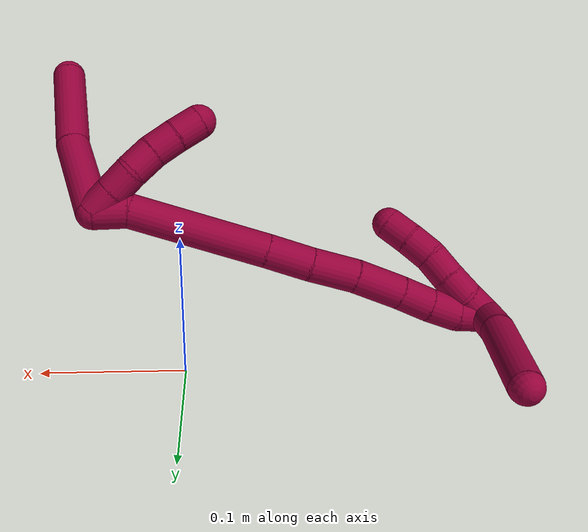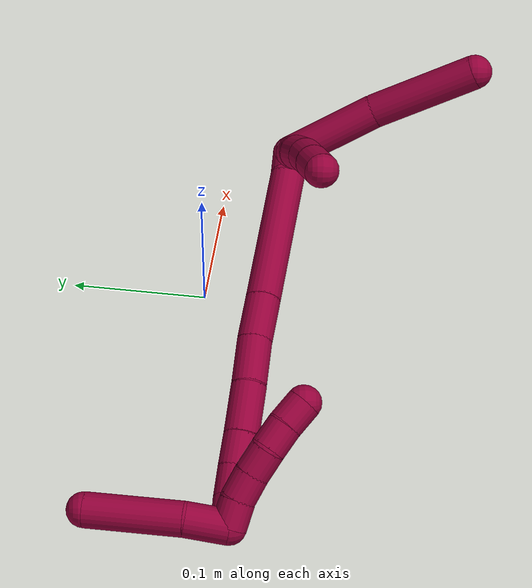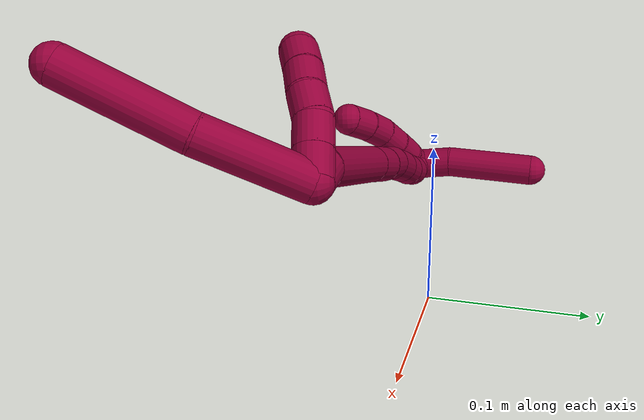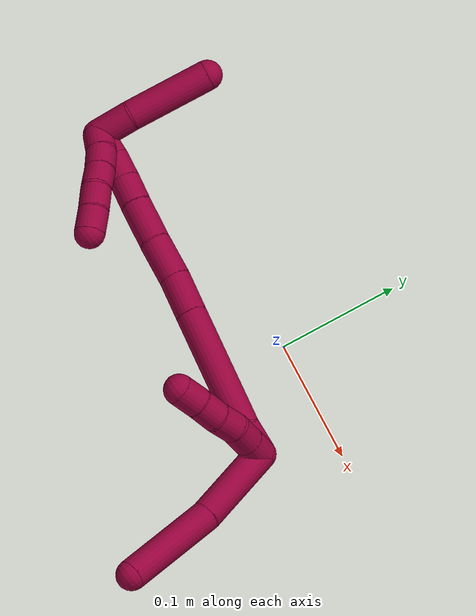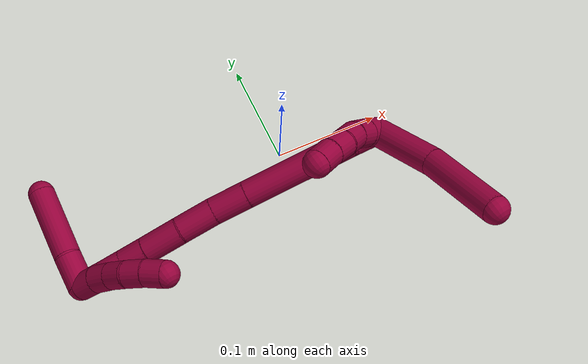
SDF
<sdf version="1.7">
 <world name="default">
  <model name="8">
   <static>0</static>
   <link name="8">
    <collision name="collision-cylinder-e_1_2_8">
     <pose>0.016869 -0.005942 -0.030041 2.9463 0.503503 2.41383</pose>
     <geometry><cylinder><radius>0.0125</radius><length>0.069924</length></cylinder></geometry>
     <surface>
      <friction><ode><mu>1.16</mu><mu2>1.16</mu2><slip1>0</slip1><slip2>0</slip2></ode></friction>
      <contact><ode><kp>1e+06</kp><kd>1</kd><max_vel>0</max_vel><min_depth>0.001</min_depth></ode></contact>
     </surface>
    </collision>
    <visual name="visual-cylinder-e_1_2_8">
     <pose>0.016869 -0.005942 -0.030041 2.9463 0.503503 2.41383</pose>
     <geometry><cylinder><radius>0.0125</radius><length>0.069924</length></cylinder></geometry>
     <material><ambient>0.584314 0 0.227451 1</ambient></material>
    </visual>
    <collision name="collision-cylinder-e_2_8_6">
     <pose>0.049855 -0.024172 -0.094612 2.79972 0.414301 1.76633</pose>
     <geometry><cylinder><radius>0.0125</radius><length>0.080076</length></cylinder></geometry>
     <surface>
      <friction><ode><mu>1.16</mu><mu2>1.16</mu2><slip1>0</slip1><slip2>0</slip2></ode></friction>
      <contact><ode><kp>1e+06</kp><kd>1</kd><max_vel>0</max_vel><min_depth>0.001</min_depth></ode></contact>
     </surface>
    </collision>
    <visual name="visual-cylinder-e_2_8_6">
     <pose>0.049855 -0.024172 -0.094612 2.79972 0.414301 1.76633</pose>
     <geometry><cylinder><radius>0.0125</radius><length>0.080076</length></cylinder></geometry>
     <material><ambient>0.584314 0 0.227451 1</ambient></material>
    </visual>
    <collision name="collision-cylinder-e_1_2_9">
     <pose>0.001181 -0.009928 -0.000206 1.59152 0.118361 0.120834</pose>
     <geometry><cylinder><radius>0.0125</radius><length>0.02</length></cylinder></geometry>
     <surface>
      <friction><ode><mu>1.16</mu><mu2>1.16</mu2><slip1>0</slip1><slip2>0</slip2></ode></friction>
      <contact><ode><kp>1e+06</kp><kd>1</kd><max_vel>0</max_vel><min_depth>0.001</min_depth></ode></contact>
     </surface>
    </collision>
    <visual name="visual-cylinder-e_1_2_9">
     <pose>0.001181 -0.009928 -0.000206 1.59152 0.118361 0.120834</pose>
     <geometry><cylinder><radius>0.0125</radius><length>0.02</length></cylinder></geometry>
     <material><ambient>0.584314 0 0.227451 1</ambient></material>
    </visual>
    <collision name="collision-cylinder-e_2_9_10">
     <pose>0.003516 -0.029784 -0.000727 1.60255 0.115663 0.119387</pose>
     <geometry><cylinder><radius>0.0125</radius><length>0.02</length></cylinder></geometry>
     <surface>
      <friction><ode><mu>1.16</mu><mu2>1.16</mu2><slip1>0</slip1><slip2>0</slip2></ode></friction>
      <contact><ode><kp>1e+06</kp><kd>1</kd><max_vel>0</max_vel><min_depth>0.001</min_depth></ode></contact>
     </surface>
    </collision>
    <visual name="visual-cylinder-e_2_9_10">
     <pose>0.003516 -0.029784 -0.000727 1.60255 0.115663 0.119387</pose>
     <geometry><cylinder><radius>0.0125</radius><length>0.02</length></cylinder></geometry>
     <material><ambient>0.584314 0 0.227451 1</ambient></material>
    </visual>
    <collision name="collision-cylinder-e_3_10_11">
     <pose>0.004633 -0.049421 -0.003437 1.81257 -0.003647 -0.004656</pose>
     <geometry><cylinder><radius>0.0125</radius><length>0.02</length></cylinder></geometry>
     <surface>
      <friction><ode><mu>1.16</mu><mu2>1.16</mu2><slip1>0</slip1><slip2>0</slip2></ode></friction>
      <contact><ode><kp>1e+06</kp><kd>1</kd><max_vel>0</max_vel><min_depth>0.001</min_depth></ode></contact>
     </surface>
    </collision>
    <visual name="visual-cylinder-e_3_10_11">
     <pose>0.004633 -0.049421 -0.003437 1.81257 -0.003647 -0.004656</pose>
     <geometry><cylinder><radius>0.0125</radius><length>0.02</length></cylinder></geometry>
     <material><ambient>0.584314 0 0.227451 1</ambient></material>
    </visual>
    <collision name="collision-cylinder-e_4_11_12">
     <pose>0.003198 -0.068868 -0.007627 1.75316 -0.140331 -0.168453</pose>
     <geometry><cylinder><radius>0.0125</radius><length>0.02</length></cylinder></geometry>
     <surface>
      <friction><ode><mu>1.16</mu><mu2>1.16</mu2><slip1>0</slip1><slip2>0</slip2></ode></friction>
      <contact><ode><kp>1e+06</kp><kd>1</kd><max_vel>0</max_vel><min_depth>0.001</min_depth></ode></contact>
     </surface>
    </collision>
    <visual name="visual-cylinder-e_4_11_12">
     <pose>0.003198 -0.068868 -0.007627 1.75316 -0.140331 -0.168453</pose>
     <geometry><cylinder><radius>0.0125</radius><length>0.02</length></cylinder></geometry>
     <material><ambient>0.584314 0 0.227451 1</ambient></material>
    </visual>
    <collision name="collision-cylinder-e_5_12_5">
     <pose>-0.000229 -0.08811 -0.011779 1.81386 -0.204295 -0.260569</pose>
     <geometry><cylinder><radius>0.0125</radius><length>0.02</length></cylinder></geometry>
     <surface>
      <friction><ode><mu>1.16</mu><mu2>1.16</mu2><slip1>0</slip1><slip2>0</slip2></ode></friction>
      <contact><ode><kp>1e+06</kp><kd>1</kd><max_vel>0</max_vel><min_depth>0.001</min_depth></ode></contact>
     </surface>
    </collision>
    <visual name="visual-cylinder-e_5_12_5">
     <pose>-0.000229 -0.08811 -0.011779 1.81386 -0.204295 -0.260569</pose>
     <geometry><cylinder><radius>0.0125</radius><length>0.02</length></cylinder></geometry>
     <material><ambient>0.584314 0 0.227451 1</ambient></material>
    </visual>
    <collision name="collision-cylinder-e_1_2_13">
     <pose>-0.007493 -0.009973 0.001407 1.43068 -0.639654 -0.560383</pose>
     <geometry><cylinder><radius>0.0125</radius><length>0.025107</length></cylinder></geometry>
     <surface>
      <friction><ode><mu>1.16</mu><mu2>1.16</mu2><slip1>0</slip1><slip2>0</slip2></ode></friction>
      <contact><ode><kp>1e+06</kp><kd>1</kd><max_vel>0</max_vel><min_depth>0.001</min_depth></ode></contact>
     </surface>
    </collision>
    <visual name="visual-cylinder-e_1_2_13">
     <pose>-0.007493 -0.009973 0.001407 1.43068 -0.639654 -0.560383</pose>
     <geometry><cylinder><radius>0.0125</radius><length>0.025107</length></cylinder></geometry>
     <material><ambient>0.584314 0 0.227451 1</ambient></material>
    </visual>
    <collision name="collision-cylinder-e_2_13_14">
     <pose>-0.056276 -0.048317 0.012398 1.24501 -0.943303 -0.701819</pose>
     <geometry><cylinder><radius>0.0125</radius><length>0.102012</length></cylinder></geometry>
     <surface>
      <friction><ode><mu>1.16</mu><mu2>1.16</mu2><slip1>0</slip1><slip2>0</slip2></ode></friction>
      <contact><ode><kp>1e+06</kp><kd>1</kd><max_vel>0</max_vel><min_depth>0.001</min_depth></ode></contact>
     </surface>
    </collision>
    <visual name="visual-cylinder-e_2_13_14">
     <pose>-0.056276 -0.048317 0.012398 1.24501 -0.943303 -0.701819</pose>
     <geometry><cylinder><radius>0.0125</radius><length>0.102012</length></cylinder></geometry>
     <material><ambient>0.584314 0 0.227451 1</ambient></material>
    </visual>
    <collision name="collision-cylinder-e_3_14_15">
     <pose>-0.111155 -0.085648 0.025148 1.23116 -0.960569 -0.706055</pose>
     <geometry><cylinder><radius>0.0125</radius><length>0.033164</length></cylinder></geometry>
     <surface>
      <friction><ode><mu>1.16</mu><mu2>1.16</mu2><slip1>0</slip1><slip2>0</slip2></ode></friction>
      <contact><ode><kp>1e+06</kp><kd>1</kd><max_vel>0</max_vel><min_depth>0.001</min_depth></ode></contact>
     </surface>
    </collision>
    <visual name="visual-cylinder-e_3_14_15">
     <pose>-0.111155 -0.085648 0.025148 1.23116 -0.960569 -0.706055</pose>
     <geometry><cylinder><radius>0.0125</radius><length>0.033164</length></cylinder></geometry>
     <material><ambient>0.584314 0 0.227451 1</ambient></material>
    </visual>
    <collision name="collision-cylinder-e_4_15_16">
     <pose>-0.138681 -0.104422 0.030493 1.35226 -0.945891 -0.779067</pose>
     <geometry><cylinder><radius>0.0125</radius><length>0.034369</length></cylinder></geometry>
     <surface>
      <friction><ode><mu>1.16</mu><mu2>1.16</mu2><slip1>0</slip1><slip2>0</slip2></ode></friction>
      <contact><ode><kp>1e+06</kp><kd>1</kd><max_vel>0</max_vel><min_depth>0.001</min_depth></ode></contact>
     </surface>
    </collision>
    <visual name="visual-cylinder-e_4_15_16">
     <pose>-0.138681 -0.104422 0.030493 1.35226 -0.945891 -0.779067</pose>
     <geometry><cylinder><radius>0.0125</radius><length>0.034369</length></cylinder></geometry>
     <material><ambient>0.584314 0 0.227451 1</ambient></material>
    </visual>
    <collision name="collision-cylinder-e_5_16_17">
     <pose>-0.168207 -0.123062 0.03531 1.28042 -1.03707 -0.803804</pose>
     <geometry><cylinder><radius>0.0125</radius><length>0.036215</length></cylinder></geometry>
     <surface>
      <friction><ode><mu>1.16</mu><mu2>1.16</mu2><slip1>0</slip1><slip2>0</slip2></ode></friction>
      <contact><ode><kp>1e+06</kp><kd>1</kd><max_vel>0</max_vel><min_depth>0.001</min_depth></ode></contact>
     </surface>
    </collision>
    <visual name="visual-cylinder-e_5_16_17">
     <pose>-0.168207 -0.123062 0.03531 1.28042 -1.03707 -0.803804</pose>
     <geometry><cylinder><radius>0.0125</radius><length>0.036215</length></cylinder></geometry>
     <material><ambient>0.584314 0 0.227451 1</ambient></material>
    </visual>
    <collision name="collision-cylinder-e_6_17_18">
     <pose>-0.19439 -0.137282 0.039911 1.22165 -1.07435 -0.790162</pose>
     <geometry><cylinder><radius>0.0125</radius><length>0.024099</length></cylinder></geometry>
     <surface>
      <friction><ode><mu>1.16</mu><mu2>1.16</mu2><slip1>0</slip1><slip2>0</slip2></ode></friction>
      <contact><ode><kp>1e+06</kp><kd>1</kd><max_vel>0</max_vel><min_depth>0.001</min_depth></ode></contact>
     </surface>
    </collision>
    <visual name="visual-cylinder-e_6_17_18">
     <pose>-0.19439 -0.137282 0.039911 1.22165 -1.07435 -0.790162</pose>
     <geometry><cylinder><radius>0.0125</radius><length>0.024099</length></cylinder></geometry>
     <material><ambient>0.584314 0 0.227451 1</ambient></material>
    </visual>
    <collision name="collision-cylinder-e_7_18_19">
     <pose>-0.214651 -0.148506 0.043521 1.29554 -1.01083 -0.793079</pose>
     <geometry><cylinder><radius>0.0125</radius><length>0.022817</length></cylinder></geometry>
     <surface>
      <friction><ode><mu>1.16</mu><mu2>1.16</mu2><slip1>0</slip1><slip2>0</slip2></ode></friction>
      <contact><ode><kp>1e+06</kp><kd>1</kd><max_vel>0</max_vel><min_depth>0.001</min_depth></ode></contact>
     </surface>
    </collision>
    <visual name="visual-cylinder-e_7_18_19">
     <pose>-0.214651 -0.148506 0.043521 1.29554 -1.01083 -0.793079</pose>
     <geometry><cylinder><radius>0.0125</radius><length>0.022817</length></cylinder></geometry>
     <material><ambient>0.584314 0 0.227451 1</ambient></material>
    </visual>
    <collision name="collision-cylinder-e_8_19_1">
     <pose>-0.231856 -0.162441 0.046126 1.4531 -0.745809 -0.669203</pose>
     <geometry><cylinder><radius>0.0125</radius><length>0.022218</length></cylinder></geometry>
     <surface>
      <friction><ode><mu>1.16</mu><mu2>1.16</mu2><slip1>0</slip1><slip2>0</slip2></ode></friction>
      <contact><ode><kp>1e+06</kp><kd>1</kd><max_vel>0</max_vel><min_depth>0.001</min_depth></ode></contact>
     </surface>
    </collision>
    <visual name="visual-cylinder-e_8_19_1">
     <pose>-0.231856 -0.162441 0.046126 1.4531 -0.745809 -0.669203</pose>
     <geometry><cylinder><radius>0.0125</radius><length>0.022218</length></cylinder></geometry>
     <material><ambient>0.584314 0 0.227451 1</ambient></material>
    </visual>
    <collision name="collision-cylinder-e_1_1_20">
     <pose>-0.237097 -0.169613 0.06235 -0.060948 0.149088 -0.004553</pose>
     <geometry><cylinder><radius>0.0125</radius><length>0.030932</length></cylinder></geometry>
     <surface>
      <friction><ode><mu>1.16</mu><mu2>1.16</mu2><slip1>0</slip1><slip2>0</slip2></ode></friction>
      <contact><ode><kp>1e+06</kp><kd>1</kd><max_vel>0</max_vel><min_depth>0.001</min_depth></ode></contact>
     </surface>
    </collision>
    <visual name="visual-cylinder-e_1_1_20">
     <pose>-0.237097 -0.169613 0.06235 -0.060948 0.149088 -0.004553</pose>
     <geometry><cylinder><radius>0.0125</radius><length>0.030932</length></cylinder></geometry>
     <material><ambient>0.584314 0 0.227451 1</ambient></material>
    </visual>
    <collision name="collision-cylinder-e_2_20_4">
     <pose>-0.233768 -0.162061 0.111494 -0.192977 0.029872 -0.002892</pose>
     <geometry><cylinder><radius>0.0125</radius><length>0.069068</length></cylinder></geometry>
     <surface>
      <friction><ode><mu>1.16</mu><mu2>1.16</mu2><slip1>0</slip1><slip2>0</slip2></ode></friction>
      <contact><ode><kp>1e+06</kp><kd>1</kd><max_vel>0</max_vel><min_depth>0.001</min_depth></ode></contact>
     </surface>
    </collision>
    <visual name="visual-cylinder-e_2_20_4">
     <pose>-0.233768 -0.162061 0.111494 -0.192977 0.029872 -0.002892</pose>
     <geometry><cylinder><radius>0.0125</radius><length>0.069068</length></cylinder></geometry>
     <material><ambient>0.584314 0 0.227451 1</ambient></material>
    </visual>
    <collision name="collision-cylinder-e_1_1_21">
     <pose>-0.229861 -0.16943 0.044278 -2.76339 1.26405 -2.63028</pose>
     <geometry><cylinder><radius>0.0125</radius><length>0.02</length></cylinder></geometry>
     <surface>
      <friction><ode><mu>1.16</mu><mu2>1.16</mu2><slip1>0</slip1><slip2>0</slip2></ode></friction>
      <contact><ode><kp>1e+06</kp><kd>1</kd><max_vel>0</max_vel><min_depth>0.001</min_depth></ode></contact>
     </surface>
    </collision>
    <visual name="visual-cylinder-e_1_1_21">
     <pose>-0.229861 -0.16943 0.044278 -2.76339 1.26405 -2.63028</pose>
     <geometry><cylinder><radius>0.0125</radius><length>0.02</length></cylinder></geometry>
     <material><ambient>0.584314 0 0.227451 1</ambient></material>
    </visual>
    <collision name="collision-cylinder-e_2_21_22">
     <pose>-0.211438 -0.167781 0.036924 -3.02483 1.0951 -2.95046</pose>
     <geometry><cylinder><radius>0.0125</radius><length>0.02</length></cylinder></geometry>
     <surface>
      <friction><ode><mu>1.16</mu><mu2>1.16</mu2><slip1>0</slip1><slip2>0</slip2></ode></friction>
      <contact><ode><kp>1e+06</kp><kd>1</kd><max_vel>0</max_vel><min_depth>0.001</min_depth></ode></contact>
     </surface>
    </collision>
    <visual name="visual-cylinder-e_2_21_22">
     <pose>-0.211438 -0.167781 0.036924 -3.02483 1.0951 -2.95046</pose>
     <geometry><cylinder><radius>0.0125</radius><length>0.02</length></cylinder></geometry>
     <material><ambient>0.584314 0 0.227451 1</ambient></material>
    </visual>
    <collision name="collision-cylinder-e_3_22_23">
     <pose>-0.193971 -0.167234 0.027234 -3.1389 1.03076 -3.13685</pose>
     <geometry><cylinder><radius>0.0125</radius><length>0.02</length></cylinder></geometry>
     <surface>
      <friction><ode><mu>1.16</mu><mu2>1.16</mu2><slip1>0</slip1><slip2>0</slip2></ode></friction>
      <contact><ode><kp>1e+06</kp><kd>1</kd><max_vel>0</max_vel><min_depth>0.001</min_depth></ode></contact>
     </surface>
    </collision>
    <visual name="visual-cylinder-e_3_22_23">
     <pose>-0.193971 -0.167234 0.027234 -3.1389 1.03076 -3.13685</pose>
     <geometry><cylinder><radius>0.0125</radius><length>0.02</length></cylinder></geometry>
     <material><ambient>0.584314 0 0.227451 1</ambient></material>
    </visual>
    <collision name="collision-cylinder-e_4_23_24">
     <pose>-0.177363 -0.165295 0.016454 -2.81252 0.932512 -2.50425</pose>
     <geometry><cylinder><radius>0.0125</radius><length>0.02</length></cylinder></geometry>
     <surface>
      <friction><ode><mu>1.16</mu><mu2>1.16</mu2><slip1>0</slip1><slip2>0</slip2></ode></friction>
      <contact><ode><kp>1e+06</kp><kd>1</kd><max_vel>0</max_vel><min_depth>0.001</min_depth></ode></contact>
     </surface>
    </collision>
    <visual name="visual-cylinder-e_4_23_24">
     <pose>-0.177363 -0.165295 0.016454 -2.81252 0.932512 -2.50425</pose>
     <geometry><cylinder><radius>0.0125</radius><length>0.02</length></cylinder></geometry>
     <material><ambient>0.584314 0 0.227451 1</ambient></material>
    </visual>
    <collision name="collision-cylinder-e_5_24_3">
     <pose>-0.161992 -0.161081 0.004421 -2.7979 0.8242 -2.38568</pose>
     <geometry><cylinder><radius>0.0125</radius><length>0.02</length></cylinder></geometry>
     <surface>
      <friction><ode><mu>1.16</mu><mu2>1.16</mu2><slip1>0</slip1><slip2>0</slip2></ode></friction>
      <contact><ode><kp>1e+06</kp><kd>1</kd><max_vel>0</max_vel><min_depth>0.001</min_depth></ode></contact>
     </surface>
    </collision>
    <visual name="visual-cylinder-e_5_24_3">
     <pose>-0.161992 -0.161081 0.004421 -2.7979 0.8242 -2.38568</pose>
     <geometry><cylinder><radius>0.0125</radius><length>0.02</length></cylinder></geometry>
     <material><ambient>0.584314 0 0.227451 1</ambient></material>
    </visual>
    <collision name="collision-sphere-3">
     <pose>-0.154652 -0.158792 -0.001973 0 -0 0</pose>
     <geometry><sphere><radius>0.0125</radius></sphere></geometry>
     <surface>
      <friction><ode><mu>1.16</mu><mu2>1.16</mu2><slip1>0</slip1><slip2>0</slip2></ode></friction>
      <contact><ode><kp>1e+06</kp><kd>1</kd><max_vel>0</max_vel><min_depth>0.001</min_depth></ode></contact>
     </surface>
    </collision>
    <visual name="visual-sphere-3">
     <pose>-0.154652 -0.158792 -0.001973 0 -0 0</pose>
     <geometry><sphere><radius>0.0125</radius></sphere></geometry>
     <material><ambient>0.584314 0 0.227451 1</ambient></material>
    </visual>
    <collision name="collision-sphere-24">
     <pose>-0.169332 -0.163369 0.010815 0 -0 0</pose>
     <geometry><sphere><radius>0.0125</radius></sphere></geometry>
     <surface>
      <friction><ode><mu>1.16</mu><mu2>1.16</mu2><slip1>0</slip1><slip2>0</slip2></ode></friction>
      <contact><ode><kp>1e+06</kp><kd>1</kd><max_vel>0</max_vel><min_depth>0.001</min_depth></ode></contact>
     </surface>
    </collision>
    <visual name="visual-sphere-24">
     <pose>-0.169332 -0.163369 0.010815 0 -0 0</pose>
     <geometry><sphere><radius>0.0125</radius></sphere></geometry>
     <material><ambient>0.584314 0 0.227451 1</ambient></material>
    </visual>
    <collision name="collision-sphere-23">
     <pose>-0.185394 -0.16722 0.022092 0 -0 0</pose>
     <geometry><sphere><radius>0.0125</radius></sphere></geometry>
     <surface>
      <friction><ode><mu>1.16</mu><mu2>1.16</mu2><slip1>0</slip1><slip2>0</slip2></ode></friction>
      <contact><ode><kp>1e+06</kp><kd>1</kd><max_vel>0</max_vel><min_depth>0.001</min_depth></ode></contact>
     </surface>
    </collision>
    <visual name="visual-sphere-23">
     <pose>-0.185394 -0.16722 0.022092 0 -0 0</pose>
     <geometry><sphere><radius>0.0125</radius></sphere></geometry>
     <material><ambient>0.584314 0 0.227451 1</ambient></material>
    </visual>
    <collision name="collision-sphere-22">
     <pose>-0.202548 -0.167248 0.032375 0 -0 0</pose>
     <geometry><sphere><radius>0.0125</radius></sphere></geometry>
     <surface>
      <friction><ode><mu>1.16</mu><mu2>1.16</mu2><slip1>0</slip1><slip2>0</slip2></ode></friction>
      <contact><ode><kp>1e+06</kp><kd>1</kd><max_vel>0</max_vel><min_depth>0.001</min_depth></ode></contact>
     </surface>
    </collision>
    <visual name="visual-sphere-22">
     <pose>-0.202548 -0.167248 0.032375 0 -0 0</pose>
     <geometry><sphere><radius>0.0125</radius></sphere></geometry>
     <material><ambient>0.584314 0 0.227451 1</ambient></material>
    </visual>
    <collision name="collision-sphere-21">
     <pose>-0.220327 -0.168315 0.041472 0 -0 0</pose>
     <geometry><sphere><radius>0.0125</radius></sphere></geometry>
     <surface>
      <friction><ode><mu>1.16</mu><mu2>1.16</mu2><slip1>0</slip1><slip2>0</slip2></ode></friction>
      <contact><ode><kp>1e+06</kp><kd>1</kd><max_vel>0</max_vel><min_depth>0.001</min_depth></ode></contact>
     </surface>
    </collision>
    <visual name="visual-sphere-21">
     <pose>-0.220327 -0.168315 0.041472 0 -0 0</pose>
     <geometry><sphere><radius>0.0125</radius></sphere></geometry>
     <material><ambient>0.584314 0 0.227451 1</ambient></material>
    </visual>
    <collision name="collision-sphere-4">
     <pose>-0.232736 -0.155441 0.145372 0 -0 0</pose>
     <geometry><sphere><radius>0.0125</radius></sphere></geometry>
     <surface>
      <friction><ode><mu>1.16</mu><mu2>1.16</mu2><slip1>0</slip1><slip2>0</slip2></ode></friction>
      <contact><ode><kp>1e+06</kp><kd>1</kd><max_vel>0</max_vel><min_depth>0.001</min_depth></ode></contact>
     </surface>
    </collision>
    <visual name="visual-sphere-4">
     <pose>-0.232736 -0.155441 0.145372 0 -0 0</pose>
     <geometry><sphere><radius>0.0125</radius></sphere></geometry>
     <material><ambient>0.584314 0 0.227451 1</ambient></material>
    </visual>
    <collision name="collision-sphere-20">
     <pose>-0.234799 -0.168682 0.077616 0 -0 0</pose>
     <geometry><sphere><radius>0.0125</radius></sphere></geometry>
     <surface>
      <friction><ode><mu>1.16</mu><mu2>1.16</mu2><slip1>0</slip1><slip2>0</slip2></ode></friction>
      <contact><ode><kp>1e+06</kp><kd>1</kd><max_vel>0</max_vel><min_depth>0.001</min_depth></ode></contact>
     </surface>
    </collision>
    <visual name="visual-sphere-20">
     <pose>-0.234799 -0.168682 0.077616 0 -0 0</pose>
     <geometry><sphere><radius>0.0125</radius></sphere></geometry>
     <material><ambient>0.584314 0 0.227451 1</ambient></material>
    </visual>
    <collision name="collision-sphere-11">
     <pose>0.004597 -0.05913 -0.005831 0 -0 0</pose>
     <geometry><sphere><radius>0.0125</radius></sphere></geometry>
     <surface>
      <friction><ode><mu>1.16</mu><mu2>1.16</mu2><slip1>0</slip1><slip2>0</slip2></ode></friction>
      <contact><ode><kp>1e+06</kp><kd>1</kd><max_vel>0</max_vel><min_depth>0.001</min_depth></ode></contact>
     </surface>
    </collision>
    <visual name="visual-sphere-11">
     <pose>0.004597 -0.05913 -0.005831 0 -0 0</pose>
     <geometry><sphere><radius>0.0125</radius></sphere></geometry>
     <material><ambient>0.584314 0 0.227451 1</ambient></material>
    </visual>
    <collision name="collision-sphere-10">
     <pose>0.00467 -0.039712 -0.001042 0 -0 0</pose>
     <geometry><sphere><radius>0.0125</radius></sphere></geometry>
     <surface>
      <friction><ode><mu>1.16</mu><mu2>1.16</mu2><slip1>0</slip1><slip2>0</slip2></ode></friction>
      <contact><ode><kp>1e+06</kp><kd>1</kd><max_vel>0</max_vel><min_depth>0.001</min_depth></ode></contact>
     </surface>
    </collision>
    <visual name="visual-sphere-10">
     <pose>0.00467 -0.039712 -0.001042 0 -0 0</pose>
     <geometry><sphere><radius>0.0125</radius></sphere></geometry>
     <material><ambient>0.584314 0 0.227451 1</ambient></material>
    </visual>
    <collision name="collision-sphere-6">
     <pose>0.065973 -0.036459 -0.129141 0 -0 0</pose>
     <geometry><sphere><radius>0.0125</radius></sphere></geometry>
     <surface>
      <friction><ode><mu>1.16</mu><mu2>1.16</mu2><slip1>0</slip1><slip2>0</slip2></ode></friction>
      <contact><ode><kp>1e+06</kp><kd>1</kd><max_vel>0</max_vel><min_depth>0.001</min_depth></ode></contact>
     </surface>
    </collision>
    <visual name="visual-sphere-6">
     <pose>0.065973 -0.036459 -0.129141 0 -0 0</pose>
     <geometry><sphere><radius>0.0125</radius></sphere></geometry>
     <material><ambient>0.584314 0 0.227451 1</ambient></material>
    </visual>
    <collision name="collision-sphere-9">
     <pose>0.002362 -0.019856 -0.000412 0 -0 0</pose>
     <geometry><sphere><radius>0.0125</radius></sphere></geometry>
     <surface>
      <friction><ode><mu>1.16</mu><mu2>1.16</mu2><slip1>0</slip1><slip2>0</slip2></ode></friction>
      <contact><ode><kp>1e+06</kp><kd>1</kd><max_vel>0</max_vel><min_depth>0.001</min_depth></ode></contact>
     </surface>
    </collision>
    <visual name="visual-sphere-9">
     <pose>0.002362 -0.019856 -0.000412 0 -0 0</pose>
     <geometry><sphere><radius>0.0125</radius></sphere></geometry>
     <material><ambient>0.584314 0 0.227451 1</ambient></material>
    </visual>
    <collision name="collision-sphere-2">
     <geometry><sphere><radius>0.0125</radius></sphere></geometry>
     <surface>
      <friction><ode><mu>1.16</mu><mu2>1.16</mu2><slip1>0</slip1><slip2>0</slip2></ode></friction>
      <contact><ode><kp>1e+06</kp><kd>1</kd><max_vel>0</max_vel><min_depth>0.001</min_depth></ode></contact>
     </surface>
    </collision>
    <visual name="visual-sphere-2">
     <geometry><sphere><radius>0.0125</radius></sphere></geometry>
     <material><ambient>0.584314 0 0.227451 1</ambient></material>
    </visual>
    <collision name="collision-sphere-19">
     <pose>-0.224317 -0.154337 0.045168 0 -0 0</pose>
     <geometry><sphere><radius>0.0125</radius></sphere></geometry>
     <surface>
      <friction><ode><mu>1.16</mu><mu2>1.16</mu2><slip1>0</slip1><slip2>0</slip2></ode></friction>
      <contact><ode><kp>1e+06</kp><kd>1</kd><max_vel>0</max_vel><min_depth>0.001</min_depth></ode></contact>
     </surface>
    </collision>
    <visual name="visual-sphere-19">
     <pose>-0.224317 -0.154337 0.045168 0 -0 0</pose>
     <geometry><sphere><radius>0.0125</radius></sphere></geometry>
     <material><ambient>0.584314 0 0.227451 1</ambient></material>
    </visual>
    <collision name="collision-sphere-8">
     <pose>0.033738 -0.011885 -0.060082 0 -0 0</pose>
     <geometry><sphere><radius>0.0125</radius></sphere></geometry>
     <surface>
      <friction><ode><mu>1.16</mu><mu2>1.16</mu2><slip1>0</slip1><slip2>0</slip2></ode></friction>
      <contact><ode><kp>1e+06</kp><kd>1</kd><max_vel>0</max_vel><min_depth>0.001</min_depth></ode></contact>
     </surface>
    </collision>
    <visual name="visual-sphere-8">
     <pose>0.033738 -0.011885 -0.060082 0 -0 0</pose>
     <geometry><sphere><radius>0.0125</radius></sphere></geometry>
     <material><ambient>0.584314 0 0.227451 1</ambient></material>
    </visual>
    <collision name="collision-sphere-12">
     <pose>0.001799 -0.078605 -0.009422 0 -0 0</pose>
     <geometry><sphere><radius>0.0125</radius></sphere></geometry>
     <surface>
      <friction><ode><mu>1.16</mu><mu2>1.16</mu2><slip1>0</slip1><slip2>0</slip2></ode></friction>
      <contact><ode><kp>1e+06</kp><kd>1</kd><max_vel>0</max_vel><min_depth>0.001</min_depth></ode></contact>
     </surface>
    </collision>
    <visual name="visual-sphere-12">
     <pose>0.001799 -0.078605 -0.009422 0 -0 0</pose>
     <geometry><sphere><radius>0.0125</radius></sphere></geometry>
     <material><ambient>0.584314 0 0.227451 1</ambient></material>
    </visual>
    <collision name="collision-sphere-5">
     <pose>-0.002258 -0.097614 -0.014136 0 -0 0</pose>
     <geometry><sphere><radius>0.0125</radius></sphere></geometry>
     <surface>
      <friction><ode><mu>1.16</mu><mu2>1.16</mu2><slip1>0</slip1><slip2>0</slip2></ode></friction>
      <contact><ode><kp>1e+06</kp><kd>1</kd><max_vel>0</max_vel><min_depth>0.001</min_depth></ode></contact>
     </surface>
    </collision>
    <visual name="visual-sphere-5">
     <pose>-0.002258 -0.097614 -0.014136 0 -0 0</pose>
     <geometry><sphere><radius>0.0125</radius></sphere></geometry>
     <material><ambient>0.584314 0 0.227451 1</ambient></material>
    </visual>
    <collision name="collision-sphere-13">
     <pose>-0.014987 -0.019946 0.002813 0 -0 0</pose>
     <geometry><sphere><radius>0.0125</radius></sphere></geometry>
     <surface>
      <friction><ode><mu>1.16</mu><mu2>1.16</mu2><slip1>0</slip1><slip2>0</slip2></ode></friction>
      <contact><ode><kp>1e+06</kp><kd>1</kd><max_vel>0</max_vel><min_depth>0.001</min_depth></ode></contact>
     </surface>
    </collision>
    <visual name="visual-sphere-13">
     <pose>-0.014987 -0.019946 0.002813 0 -0 0</pose>
     <geometry><sphere><radius>0.0125</radius></sphere></geometry>
     <material><ambient>0.584314 0 0.227451 1</ambient></material>
    </visual>
    <collision name="collision-sphere-14">
     <pose>-0.097566 -0.076689 0.021982 0 -0 0</pose>
     <geometry><sphere><radius>0.0125</radius></sphere></geometry>
     <surface>
      <friction><ode><mu>1.16</mu><mu2>1.16</mu2><slip1>0</slip1><slip2>0</slip2></ode></friction>
      <contact><ode><kp>1e+06</kp><kd>1</kd><max_vel>0</max_vel><min_depth>0.001</min_depth></ode></contact>
     </surface>
    </collision>
    <visual name="visual-sphere-14">
     <pose>-0.097566 -0.076689 0.021982 0 -0 0</pose>
     <geometry><sphere><radius>0.0125</radius></sphere></geometry>
     <material><ambient>0.584314 0 0.227451 1</ambient></material>
    </visual>
    <collision name="collision-sphere-15">
     <pose>-0.124744 -0.094608 0.028313 0 -0 0</pose>
     <geometry><sphere><radius>0.0125</radius></sphere></geometry>
     <surface>
      <friction><ode><mu>1.16</mu><mu2>1.16</mu2><slip1>0</slip1><slip2>0</slip2></ode></friction>
      <contact><ode><kp>1e+06</kp><kd>1</kd><max_vel>0</max_vel><min_depth>0.001</min_depth></ode></contact>
     </surface>
    </collision>
    <visual name="visual-sphere-15">
     <pose>-0.124744 -0.094608 0.028313 0 -0 0</pose>
     <geometry><sphere><radius>0.0125</radius></sphere></geometry>
     <material><ambient>0.584314 0 0.227451 1</ambient></material>
    </visual>
    <collision name="collision-sphere-16">
     <pose>-0.152618 -0.114236 0.032672 0 -0 0</pose>
     <geometry><sphere><radius>0.0125</radius></sphere></geometry>
     <surface>
      <friction><ode><mu>1.16</mu><mu2>1.16</mu2><slip1>0</slip1><slip2>0</slip2></ode></friction>
      <contact><ode><kp>1e+06</kp><kd>1</kd><max_vel>0</max_vel><min_depth>0.001</min_depth></ode></contact>
     </surface>
    </collision>
    <visual name="visual-sphere-16">
     <pose>-0.152618 -0.114236 0.032672 0 -0 0</pose>
     <geometry><sphere><radius>0.0125</radius></sphere></geometry>
     <material><ambient>0.584314 0 0.227451 1</ambient></material>
    </visual>
    <collision name="collision-sphere-17">
     <pose>-0.183796 -0.131889 0.037947 0 -0 0</pose>
     <geometry><sphere><radius>0.0125</radius></sphere></geometry>
     <surface>
      <friction><ode><mu>1.16</mu><mu2>1.16</mu2><slip1>0</slip1><slip2>0</slip2></ode></friction>
      <contact><ode><kp>1e+06</kp><kd>1</kd><max_vel>0</max_vel><min_depth>0.001</min_depth></ode></contact>
     </surface>
    </collision>
    <visual name="visual-sphere-17">
     <pose>-0.183796 -0.131889 0.037947 0 -0 0</pose>
     <geometry><sphere><radius>0.0125</radius></sphere></geometry>
     <material><ambient>0.584314 0 0.227451 1</ambient></material>
    </visual>
    <collision name="collision-sphere-18">
     <pose>-0.204985 -0.142674 0.041874 0 -0 0</pose>
     <geometry><sphere><radius>0.0125</radius></sphere></geometry>
     <surface>
      <friction><ode><mu>1.16</mu><mu2>1.16</mu2><slip1>0</slip1><slip2>0</slip2></ode></friction>
      <contact><ode><kp>1e+06</kp><kd>1</kd><max_vel>0</max_vel><min_depth>0.001</min_depth></ode></contact>
     </surface>
    </collision>
    <visual name="visual-sphere-18">
     <pose>-0.204985 -0.142674 0.041874 0 -0 0</pose>
     <geometry><sphere><radius>0.0125</radius></sphere></geometry>
     <material><ambient>0.584314 0 0.227451 1</ambient></material>
    </visual>
    <collision name="collision-sphere-1">
     <pose>-0.239394 -0.170545 0.047084 0 -0 0</pose>
     <geometry><sphere><radius>0.0125</radius></sphere></geometry>
     <surface>
      <friction><ode><mu>1.16</mu><mu2>1.16</mu2><slip1>0</slip1><slip2>0</slip2></ode></friction>
      <contact><ode><kp>1e+06</kp><kd>1</kd><max_vel>0</max_vel><min_depth>0.001</min_depth></ode></contact>
     </surface>
    </collision>
    <visual name="visual-sphere-1">
     <pose>-0.239394 -0.170545 0.047084 0 -0 0</pose>
     <geometry><sphere><radius>0.0125</radius></sphere></geometry>
     <material><ambient>0.584314 0 0.227451 1</ambient></material>
    </visual>
    <inertial>
     <pose>-0.097015 -0.088934 0.012672 0 -0 0</pose>
     <mass>0.75</mass>
     <inertia>
      <ixx>6.7e-05</ixx>
      <ixy>0</ixy>
      <ixz>0</ixz>
      <iyy>0.000155</iyy>
      <iyz>0</iyz>
      <izz>0.000132</izz>
     </inertia>
    </inertial>
   </link>
   <pose>0.064617 -0.056095 0.096432 -1.45403 -0.921532 0.075393</pose>
  </model>
 </world>
</sdf>
